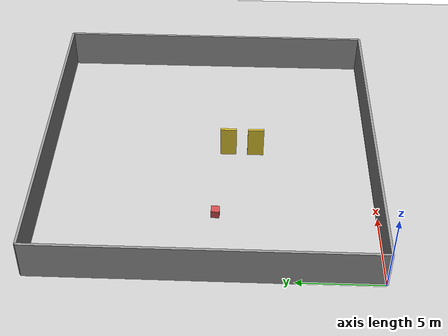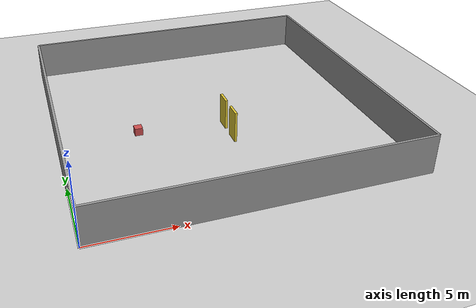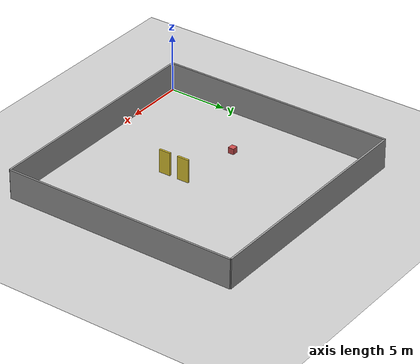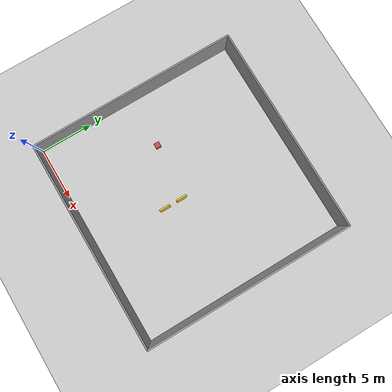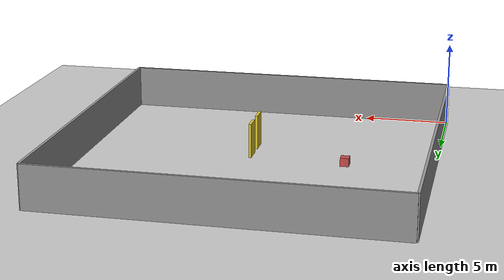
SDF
<sdf version="1.7">
 <world name="default">
  <include><uri>model://sun</uri></include>
  <include><uri>model://ground_plane</uri></include>
  <model name="wall_south">
   <static>true</static>
   <pose>10 0 1.25 0 0 0</pose>
   <link name="link">
    <collision name="collision"><geometry><box><size>20 0.15 2.5</size></box></geometry></collision>
    <visual name="visual">
     <geometry><box><size>20 0.15 2.5</size></box></geometry>
     <material><ambient>0.6 0.6 0.6 1</ambient><diffuse>0.6 0.6 0.6 1</diffuse></material>
    </visual>
   </link>
  </model>
  <model name="wall_north">
   <static>true</static>
   <pose>10 20 1.25 0 0 0</pose>
   <link name="link">
    <collision name="collision"><geometry><box><size>20 0.15 2.5</size></box></geometry></collision>
    <visual name="visual">
     <geometry><box><size>20 0.15 2.5</size></box></geometry>
     <material><ambient>0.6 0.6 0.6 1</ambient><diffuse>0.6 0.6 0.6 1</diffuse></material>
    </visual>
   </link>
  </model>
  <model name="wall_west">
   <static>true</static>
   <pose>0 10 1.25 0 0 1.5708</pose>
   <link name="link">
    <collision name="collision"><geometry><box><size>20 0.15 2.5</size></box></geometry></collision>
    <visual name="visual">
     <geometry><box><size>20 0.15 2.5</size></box></geometry>
     <material><ambient>0.6 0.6 0.6 1</ambient><diffuse>0.6 0.6 0.6 1</diffuse></material>
    </visual>
   </link>
  </model>
  <model name="wall_east">
   <static>true</static>
   <pose>20 10 1.25 0 0 1.5708</pose>
   <link name="link">
    <collision name="collision"><geometry><box><size>20 0.15 2.5</size></box></geometry></collision>
    <visual name="visual">
     <geometry><box><size>20 0.15 2.5</size></box></geometry>
     <material><ambient>0.6 0.6 0.6 1</ambient><diffuse>0.6 0.6 0.6 1</diffuse></material>
    </visual>
   </link>
  </model>
  <model name="box_obstacle">
   <static>true</static>
   <pose>5 9.5 0.25 0 0 0</pose>
   <link name="link">
    <collision name="collision"><geometry><box><size>0.5 0.5 0.5</size></box></geometry></collision>
    <visual name="visual">
     <geometry><box><size>0.5 0.5 0.5</size></box></geometry>
     <material><ambient>0.8 0.3 0.3 1</ambient><diffuse>0.8 0.3 0.3 1</diffuse></material>
    </visual>
   </link>
  </model>
  <model name="gate_west">
   <static>true</static>
   <pose>10.5 7.15 1.0 0 0 0</pose>
   <link name="link">
    <collision name="collision"><geometry><box><size>0.15 1.0 2.0</size></box></geometry></collision>
    <visual name="visual">
     <geometry><box><size>0.15 1.0 2.0</size></box></geometry>
     <material><ambient>0.9 0.8 0.2 1</ambient><diffuse>0.9 0.8 0.2 1</diffuse></material>
    </visual>
   </link>
  </model>
  <model name="gate_east">
   <static>true</static>
   <pose>10.5 8.85 1.0 0 0 0</pose>
   <link name="link">
    <collision name="collision"><geometry><box><size>0.15 1.0 2.0</size></box></geometry></collision>
    <visual name="visual">
     <geometry><box><size>0.15 1.0 2.0</size></box></geometry>
     <material><ambient>0.9 0.8 0.2 1</ambient><diffuse>0.9 0.8 0.2 1</diffuse></material>
    </visual>
   </link>
  </model>
 </world>
</sdf>
